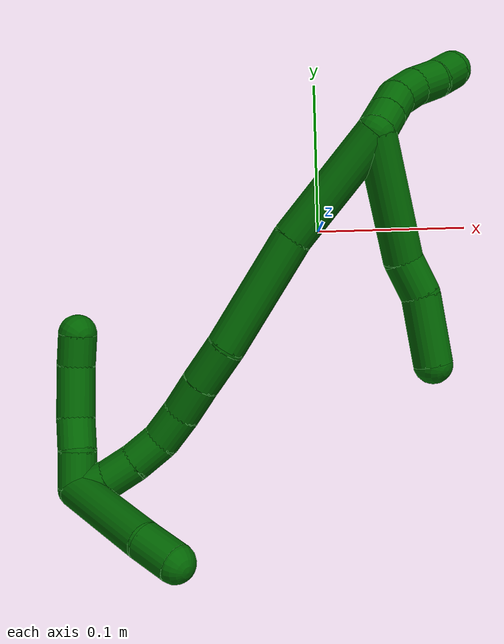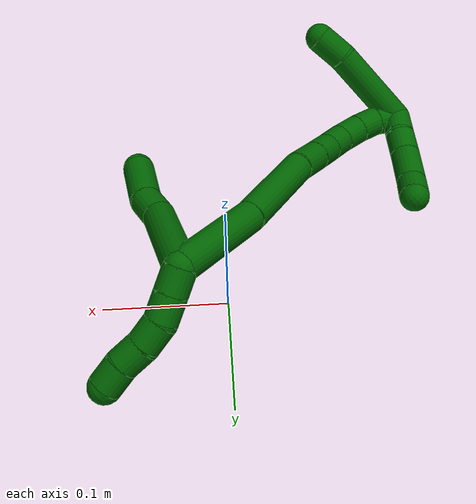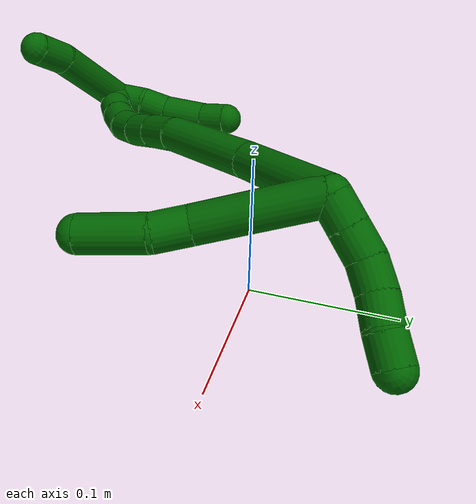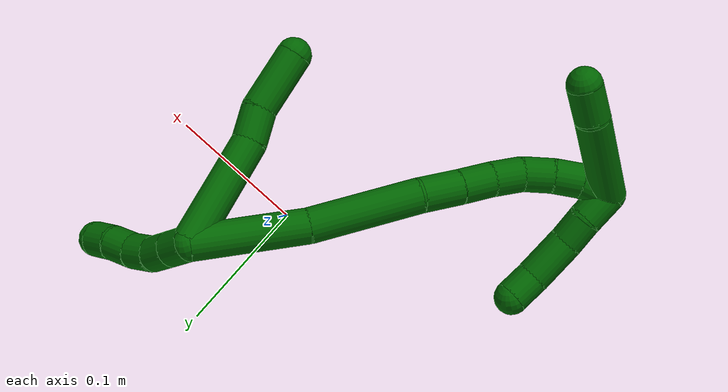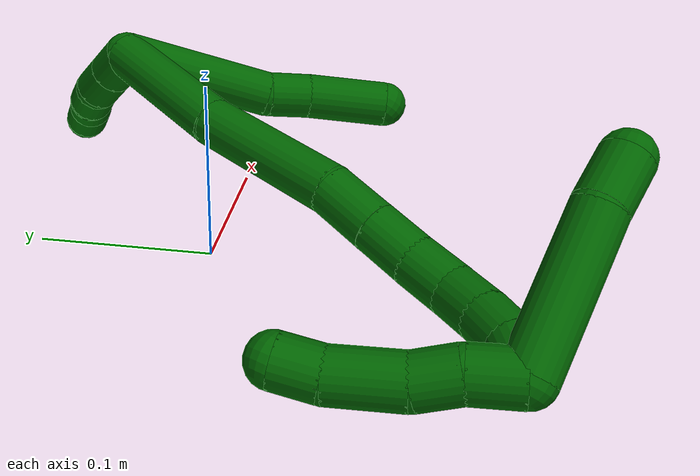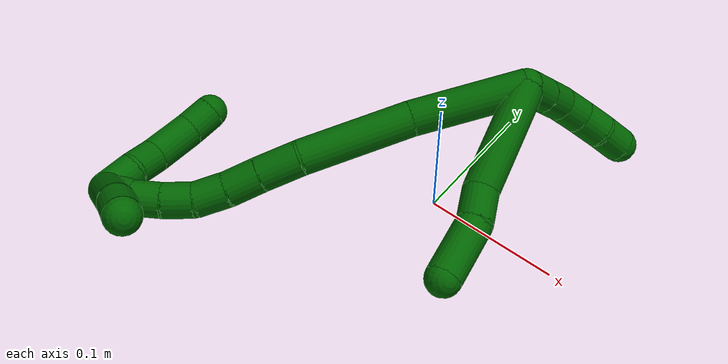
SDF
<sdf version="1.7">
 <world name="default">
  <model name="6">
   <static>0</static>
   <link name="6">
    <collision name="collision-cylinder-e_1_2_8">
     <pose>0.002349 -0.039345 0.009653 1.33021 0.057907 0.045422</pose>
     <geometry><cylinder><radius>0.0125</radius><length>0.081159</length></cylinder></geometry>
     <surface>
      <friction><ode><mu>1.16</mu><mu2>1.16</mu2><slip1>0</slip1><slip2>0</slip2></ode></friction>
      <contact><ode><kp>1e+06</kp><kd>1</kd><max_vel>0</max_vel><min_depth>0.001</min_depth></ode></contact>
     </surface>
    </collision>
    <visual name="visual-cylinder-e_1_2_8">
     <pose>0.002349 -0.039345 0.009653 1.33021 0.057907 0.045422</pose>
     <geometry><cylinder><radius>0.0125</radius><length>0.081159</length></cylinder></geometry>
     <material><ambient>0 0.392157 0.003922 1</ambient></material>
    </visual>
    <collision name="collision-cylinder-e_2_8_9">
     <pose>0.006562 -0.089272 0.025126 1.06794 0.153205 0.0907</pose>
     <geometry><cylinder><radius>0.0125</radius><length>0.024441</length></cylinder></geometry>
     <surface>
      <friction><ode><mu>1.16</mu><mu2>1.16</mu2><slip1>0</slip1><slip2>0</slip2></ode></friction>
      <contact><ode><kp>1e+06</kp><kd>1</kd><max_vel>0</max_vel><min_depth>0.001</min_depth></ode></contact>
     </surface>
    </collision>
    <visual name="visual-cylinder-e_2_8_9">
     <pose>0.006562 -0.089272 0.025126 1.06794 0.153205 0.0907</pose>
     <geometry><cylinder><radius>0.0125</radius><length>0.024441</length></cylinder></geometry>
     <material><ambient>0 0.392157 0.003922 1</ambient></material>
    </visual>
    <collision name="collision-cylinder-e_3_9_6">
     <pose>0.006126 -0.120482 0.038823 1.20603 -0.103815 -0.071518</pose>
     <geometry><cylinder><radius>0.0125</radius><length>0.044399</length></cylinder></geometry>
     <surface>
      <friction><ode><mu>1.16</mu><mu2>1.16</mu2><slip1>0</slip1><slip2>0</slip2></ode></friction>
      <contact><ode><kp>1e+06</kp><kd>1</kd><max_vel>0</max_vel><min_depth>0.001</min_depth></ode></contact>
     </surface>
    </collision>
    <visual name="visual-cylinder-e_3_9_6">
     <pose>0.006126 -0.120482 0.038823 1.20603 -0.103815 -0.071518</pose>
     <geometry><cylinder><radius>0.0125</radius><length>0.044399</length></cylinder></geometry>
     <material><ambient>0 0.392157 0.003922 1</ambient></material>
    </visual>
    <collision name="collision-cylinder-e_1_2_10">
     <pose>0.008716 0.002461 -0.004239 -2.61564 1.05856 -2.27894</pose>
     <geometry><cylinder><radius>0.0125</radius><length>0.02</length></cylinder></geometry>
     <surface>
      <friction><ode><mu>1.16</mu><mu2>1.16</mu2><slip1>0</slip1><slip2>0</slip2></ode></friction>
      <contact><ode><kp>1e+06</kp><kd>1</kd><max_vel>0</max_vel><min_depth>0.001</min_depth></ode></contact>
     </surface>
    </collision>
    <visual name="visual-cylinder-e_1_2_10">
     <pose>0.008716 0.002461 -0.004239 -2.61564 1.05856 -2.27894</pose>
     <geometry><cylinder><radius>0.0125</radius><length>0.02</length></cylinder></geometry>
     <material><ambient>0 0.392157 0.003922 1</ambient></material>
    </visual>
    <collision name="collision-cylinder-e_2_10_11">
     <pose>0.026164 0.007376 -0.012691 -2.61407 1.06148 -2.2791</pose>
     <geometry><cylinder><radius>0.0125</radius><length>0.02</length></cylinder></geometry>
     <surface>
      <friction><ode><mu>1.16</mu><mu2>1.16</mu2><slip1>0</slip1><slip2>0</slip2></ode></friction>
      <contact><ode><kp>1e+06</kp><kd>1</kd><max_vel>0</max_vel><min_depth>0.001</min_depth></ode></contact>
     </surface>
    </collision>
    <visual name="visual-cylinder-e_2_10_11">
     <pose>0.026164 0.007376 -0.012691 -2.61407 1.06148 -2.2791</pose>
     <geometry><cylinder><radius>0.0125</radius><length>0.02</length></cylinder></geometry>
     <material><ambient>0 0.392157 0.003922 1</ambient></material>
    </visual>
    <collision name="collision-cylinder-e_3_11_12">
     <pose>0.044688 0.010959 -0.018582 -2.54969 1.36712 -2.42524</pose>
     <geometry><cylinder><radius>0.0125</radius><length>0.02</length></cylinder></geometry>
     <surface>
      <friction><ode><mu>1.16</mu><mu2>1.16</mu2><slip1>0</slip1><slip2>0</slip2></ode></friction>
      <contact><ode><kp>1e+06</kp><kd>1</kd><max_vel>0</max_vel><min_depth>0.001</min_depth></ode></contact>
     </surface>
    </collision>
    <visual name="visual-cylinder-e_3_11_12">
     <pose>0.044688 0.010959 -0.018582 -2.54969 1.36712 -2.42524</pose>
     <geometry><cylinder><radius>0.0125</radius><length>0.02</length></cylinder></geometry>
     <material><ambient>0 0.392157 0.003922 1</ambient></material>
    </visual>
    <collision name="collision-cylinder-e_4_12_13">
     <pose>0.064469 0.012553 -0.020106 -1.24899 1.52167 -1.20275</pose>
     <geometry><cylinder><radius>0.0125</radius><length>0.02</length></cylinder></geometry>
     <surface>
      <friction><ode><mu>1.16</mu><mu2>1.16</mu2><slip1>0</slip1><slip2>0</slip2></ode></friction>
      <contact><ode><kp>1e+06</kp><kd>1</kd><max_vel>0</max_vel><min_depth>0.001</min_depth></ode></contact>
     </surface>
    </collision>
    <visual name="visual-cylinder-e_4_12_13">
     <pose>0.064469 0.012553 -0.020106 -1.24899 1.52167 -1.20275</pose>
     <geometry><cylinder><radius>0.0125</radius><length>0.02</length></cylinder></geometry>
     <material><ambient>0 0.392157 0.003922 1</ambient></material>
    </visual>
    <collision name="collision-cylinder-e_5_13_5">
     <pose>0.08429 0.01366 -0.021655 -2.78215 1.38767 -2.71151</pose>
     <geometry><cylinder><radius>0.0125</radius><length>0.02</length></cylinder></geometry>
     <surface>
      <friction><ode><mu>1.16</mu><mu2>1.16</mu2><slip1>0</slip1><slip2>0</slip2></ode></friction>
      <contact><ode><kp>1e+06</kp><kd>1</kd><max_vel>0</max_vel><min_depth>0.001</min_depth></ode></contact>
     </surface>
    </collision>
    <visual name="visual-cylinder-e_5_13_5">
     <pose>0.08429 0.01366 -0.021655 -2.78215 1.38767 -2.71151</pose>
     <geometry><cylinder><radius>0.0125</radius><length>0.02</length></cylinder></geometry>
     <material><ambient>0 0.392157 0.003922 1</ambient></material>
    </visual>
    <collision name="collision-cylinder-e_1_2_14">
     <pose>-0.024043 -0.030191 -0.011711 1.94083 -0.638644 -0.899741</pose>
     <geometry><cylinder><radius>0.0125</radius><length>0.080665</length></cylinder></geometry>
     <surface>
      <friction><ode><mu>1.16</mu><mu2>1.16</mu2><slip1>0</slip1><slip2>0</slip2></ode></friction>
      <contact><ode><kp>1e+06</kp><kd>1</kd><max_vel>0</max_vel><min_depth>0.001</min_depth></ode></contact>
     </surface>
    </collision>
    <visual name="visual-cylinder-e_1_2_14">
     <pose>-0.024043 -0.030191 -0.011711 1.94083 -0.638644 -0.899741</pose>
     <geometry><cylinder><radius>0.0125</radius><length>0.080665</length></cylinder></geometry>
     <material><ambient>0 0.392157 0.003922 1</ambient></material>
    </visual>
    <collision name="collision-cylinder-e_2_14_15">
     <pose>-0.070699 -0.09223 -0.030501 1.78951 -0.606109 -0.743395</pose>
     <geometry><cylinder><radius>0.0125</radius><length>0.079391</length></cylinder></geometry>
     <surface>
      <friction><ode><mu>1.16</mu><mu2>1.16</mu2><slip1>0</slip1><slip2>0</slip2></ode></friction>
      <contact><ode><kp>1e+06</kp><kd>1</kd><max_vel>0</max_vel><min_depth>0.001</min_depth></ode></contact>
     </surface>
    </collision>
    <visual name="visual-cylinder-e_2_14_15">
     <pose>-0.070699 -0.09223 -0.030501 1.78951 -0.606109 -0.743395</pose>
     <geometry><cylinder><radius>0.0125</radius><length>0.079391</length></cylinder></geometry>
     <material><ambient>0 0.392157 0.003922 1</ambient></material>
    </visual>
    <collision name="collision-cylinder-e_3_15_16">
     <pose>-0.100361 -0.136025 -0.042298 1.94686 -0.501871 -0.720724</pose>
     <geometry><cylinder><radius>0.0125</radius><length>0.029304</length></cylinder></geometry>
     <surface>
      <friction><ode><mu>1.16</mu><mu2>1.16</mu2><slip1>0</slip1><slip2>0</slip2></ode></friction>
      <contact><ode><kp>1e+06</kp><kd>1</kd><max_vel>0</max_vel><min_depth>0.001</min_depth></ode></contact>
     </surface>
    </collision>
    <visual name="visual-cylinder-e_3_15_16">
     <pose>-0.100361 -0.136025 -0.042298 1.94686 -0.501871 -0.720724</pose>
     <geometry><cylinder><radius>0.0125</radius><length>0.029304</length></cylinder></geometry>
     <material><ambient>0 0.392157 0.003922 1</ambient></material>
    </visual>
    <collision name="collision-cylinder-e_4_16_17">
     <pose>-0.112965 -0.158131 -0.050856 1.93234 -0.472888 -0.671074</pose>
     <geometry><cylinder><radius>0.0125</radius><length>0.024397</length></cylinder></geometry>
     <surface>
      <friction><ode><mu>1.16</mu><mu2>1.16</mu2><slip1>0</slip1><slip2>0</slip2></ode></friction>
      <contact><ode><kp>1e+06</kp><kd>1</kd><max_vel>0</max_vel><min_depth>0.001</min_depth></ode></contact>
     </surface>
    </collision>
    <visual name="visual-cylinder-e_4_16_17">
     <pose>-0.112965 -0.158131 -0.050856 1.93234 -0.472888 -0.671074</pose>
     <geometry><cylinder><radius>0.0125</radius><length>0.024397</length></cylinder></geometry>
     <material><ambient>0 0.392157 0.003922 1</ambient></material>
    </visual>
    <collision name="collision-cylinder-e_5_17_18">
     <pose>-0.124988 -0.177298 -0.058152 1.93688 -0.590438 -0.832817</pose>
     <geometry><cylinder><radius>0.0125</radius><length>0.02323</length></cylinder></geometry>
     <surface>
      <friction><ode><mu>1.16</mu><mu2>1.16</mu2><slip1>0</slip1><slip2>0</slip2></ode></friction>
      <contact><ode><kp>1e+06</kp><kd>1</kd><max_vel>0</max_vel><min_depth>0.001</min_depth></ode></contact>
     </surface>
    </collision>
    <visual name="visual-cylinder-e_5_17_18">
     <pose>-0.124988 -0.177298 -0.058152 1.93688 -0.590438 -0.832817</pose>
     <geometry><cylinder><radius>0.0125</radius><length>0.02323</length></cylinder></geometry>
     <material><ambient>0 0.392157 0.003922 1</ambient></material>
    </visual>
    <collision name="collision-cylinder-e_6_18_19">
     <pose>-0.139729 -0.192423 -0.065179 2.09962 -0.862812 -1.35208</pose>
     <geometry><cylinder><radius>0.0125</radius><length>0.021785</length></cylinder></geometry>
     <surface>
      <friction><ode><mu>1.16</mu><mu2>1.16</mu2><slip1>0</slip1><slip2>0</slip2></ode></friction>
      <contact><ode><kp>1e+06</kp><kd>1</kd><max_vel>0</max_vel><min_depth>0.001</min_depth></ode></contact>
     </surface>
    </collision>
    <visual name="visual-cylinder-e_6_18_19">
     <pose>-0.139729 -0.192423 -0.065179 2.09962 -0.862812 -1.35208</pose>
     <geometry><cylinder><radius>0.0125</radius><length>0.021785</length></cylinder></geometry>
     <material><ambient>0 0.392157 0.003922 1</ambient></material>
    </visual>
    <collision name="collision-cylinder-e_7_19_20">
     <pose>-0.156141 -0.20334 -0.072812 2.2726 -0.912946 -1.62729</pose>
     <geometry><cylinder><radius>0.0125</radius><length>0.020567</length></cylinder></geometry>
     <surface>
      <friction><ode><mu>1.16</mu><mu2>1.16</mu2><slip1>0</slip1><slip2>0</slip2></ode></friction>
      <contact><ode><kp>1e+06</kp><kd>1</kd><max_vel>0</max_vel><min_depth>0.001</min_depth></ode></contact>
     </surface>
    </collision>
    <visual name="visual-cylinder-e_7_19_20">
     <pose>-0.156141 -0.20334 -0.072812 2.2726 -0.912946 -1.62729</pose>
     <geometry><cylinder><radius>0.0125</radius><length>0.020567</length></cylinder></geometry>
     <material><ambient>0 0.392157 0.003922 1</ambient></material>
    </visual>
    <collision name="collision-cylinder-e_8_20_1">
     <pose>-0.172252 -0.210779 -0.082886 2.72849 -0.881754 -2.30575</pose>
     <geometry><cylinder><radius>0.0125</radius><length>0.020661</length></cylinder></geometry>
     <surface>
      <friction><ode><mu>1.16</mu><mu2>1.16</mu2><slip1>0</slip1><slip2>0</slip2></ode></friction>
      <contact><ode><kp>1e+06</kp><kd>1</kd><max_vel>0</max_vel><min_depth>0.001</min_depth></ode></contact>
     </surface>
    </collision>
    <visual name="visual-cylinder-e_8_20_1">
     <pose>-0.172252 -0.210779 -0.082886 2.72849 -0.881754 -2.30575</pose>
     <geometry><cylinder><radius>0.0125</radius><length>0.020661</length></cylinder></geometry>
     <material><ambient>0 0.392157 0.003922 1</ambient></material>
    </visual>
    <collision name="collision-cylinder-e_1_1_21">
     <pose>-0.176178 -0.203067 -0.093104 -1.95653 0.347624 -0.510251</pose>
     <geometry><cylinder><radius>0.0125</radius><length>0.023758</length></cylinder></geometry>
     <surface>
      <friction><ode><mu>1.16</mu><mu2>1.16</mu2><slip1>0</slip1><slip2>0</slip2></ode></friction>
      <contact><ode><kp>1e+06</kp><kd>1</kd><max_vel>0</max_vel><min_depth>0.001</min_depth></ode></contact>
     </surface>
    </collision>
    <visual name="visual-cylinder-e_1_1_21">
     <pose>-0.176178 -0.203067 -0.093104 -1.95653 0.347624 -0.510251</pose>
     <geometry><cylinder><radius>0.0125</radius><length>0.023758</length></cylinder></geometry>
     <material><ambient>0 0.392157 0.003922 1</ambient></material>
    </visual>
    <collision name="collision-cylinder-e_2_21_22">
     <pose>-0.168015 -0.18483 -0.103011 -2.19682 0.400002 -0.755345</pose>
     <geometry><cylinder><radius>0.0125</radius><length>0.021141</length></cylinder></geometry>
     <surface>
      <friction><ode><mu>1.16</mu><mu2>1.16</mu2><slip1>0</slip1><slip2>0</slip2></ode></friction>
      <contact><ode><kp>1e+06</kp><kd>1</kd><max_vel>0</max_vel><min_depth>0.001</min_depth></ode></contact>
     </surface>
    </collision>
    <visual name="visual-cylinder-e_2_21_22">
     <pose>-0.168015 -0.18483 -0.103011 -2.19682 0.400002 -0.755345</pose>
     <geometry><cylinder><radius>0.0125</radius><length>0.021141</length></cylinder></geometry>
     <material><ambient>0 0.392157 0.003922 1</ambient></material>
    </visual>
    <collision name="collision-cylinder-e_3_22_23">
     <pose>-0.158027 -0.161964 -0.114647 -1.94793 0.349544 -0.508471</pose>
     <geometry><cylinder><radius>0.0125</radius><length>0.03429</length></cylinder></geometry>
     <surface>
      <friction><ode><mu>1.16</mu><mu2>1.16</mu2><slip1>0</slip1><slip2>0</slip2></ode></friction>
      <contact><ode><kp>1e+06</kp><kd>1</kd><max_vel>0</max_vel><min_depth>0.001</min_depth></ode></contact>
     </surface>
    </collision>
    <visual name="visual-cylinder-e_3_22_23">
     <pose>-0.158027 -0.161964 -0.114647 -1.94793 0.349544 -0.508471</pose>
     <geometry><cylinder><radius>0.0125</radius><length>0.03429</length></cylinder></geometry>
     <material><ambient>0 0.392157 0.003922 1</ambient></material>
    </visual>
    <collision name="collision-cylinder-e_4_23_4">
     <pose>-0.149188 -0.137166 -0.122311 -1.74532 0.289193 -0.343645</pose>
     <geometry><cylinder><radius>0.0125</radius><length>0.020811</length></cylinder></geometry>
     <surface>
      <friction><ode><mu>1.16</mu><mu2>1.16</mu2><slip1>0</slip1><slip2>0</slip2></ode></friction>
      <contact><ode><kp>1e+06</kp><kd>1</kd><max_vel>0</max_vel><min_depth>0.001</min_depth></ode></contact>
     </surface>
    </collision>
    <visual name="visual-cylinder-e_4_23_4">
     <pose>-0.149188 -0.137166 -0.122311 -1.74532 0.289193 -0.343645</pose>
     <geometry><cylinder><radius>0.0125</radius><length>0.020811</length></cylinder></geometry>
     <material><ambient>0 0.392157 0.003922 1</ambient></material>
    </visual>
    <collision name="collision-cylinder-e_1_1_24">
     <pose>-0.180311 -0.213394 -0.052011 -0.000564 -0.002323 1e-06</pose>
     <geometry><cylinder><radius>0.0125</radius><length>0.073781</length></cylinder></geometry>
     <surface>
      <friction><ode><mu>1.16</mu><mu2>1.16</mu2><slip1>0</slip1><slip2>0</slip2></ode></friction>
      <contact><ode><kp>1e+06</kp><kd>1</kd><max_vel>0</max_vel><min_depth>0.001</min_depth></ode></contact>
     </surface>
    </collision>
    <visual name="visual-cylinder-e_1_1_24">
     <pose>-0.180311 -0.213394 -0.052011 -0.000564 -0.002323 1e-06</pose>
     <geometry><cylinder><radius>0.0125</radius><length>0.073781</length></cylinder></geometry>
     <material><ambient>0 0.392157 0.003922 1</ambient></material>
    </visual>
    <collision name="collision-cylinder-e_2_24_3">
     <pose>-0.178614 -0.215176 -0.002259 0.139186 0.136377 0.009521</pose>
     <geometry><cylinder><radius>0.0125</radius><length>0.026219</length></cylinder></geometry>
     <surface>
      <friction><ode><mu>1.16</mu><mu2>1.16</mu2><slip1>0</slip1><slip2>0</slip2></ode></friction>
      <contact><ode><kp>1e+06</kp><kd>1</kd><max_vel>0</max_vel><min_depth>0.001</min_depth></ode></contact>
     </surface>
    </collision>
    <visual name="visual-cylinder-e_2_24_3">
     <pose>-0.178614 -0.215176 -0.002259 0.139186 0.136377 0.009521</pose>
     <geometry><cylinder><radius>0.0125</radius><length>0.026219</length></cylinder></geometry>
     <material><ambient>0 0.392157 0.003922 1</ambient></material>
    </visual>
    <collision name="collision-sphere-3">
     <pose>-0.176832 -0.216977 0.010603 0 -0 0</pose>
     <geometry><sphere><radius>0.0125</radius></sphere></geometry>
     <surface>
      <friction><ode><mu>1.16</mu><mu2>1.16</mu2><slip1>0</slip1><slip2>0</slip2></ode></friction>
      <contact><ode><kp>1e+06</kp><kd>1</kd><max_vel>0</max_vel><min_depth>0.001</min_depth></ode></contact>
     </surface>
    </collision>
    <visual name="visual-sphere-3">
     <pose>-0.176832 -0.216977 0.010603 0 -0 0</pose>
     <geometry><sphere><radius>0.0125</radius></sphere></geometry>
     <material><ambient>0 0.392157 0.003922 1</ambient></material>
    </visual>
    <collision name="collision-sphere-24">
     <pose>-0.180396 -0.213374 -0.015121 0 -0 0</pose>
     <geometry><sphere><radius>0.0125</radius></sphere></geometry>
     <surface>
      <friction><ode><mu>1.16</mu><mu2>1.16</mu2><slip1>0</slip1><slip2>0</slip2></ode></friction>
      <contact><ode><kp>1e+06</kp><kd>1</kd><max_vel>0</max_vel><min_depth>0.001</min_depth></ode></contact>
     </surface>
    </collision>
    <visual name="visual-sphere-24">
     <pose>-0.180396 -0.213374 -0.015121 0 -0 0</pose>
     <geometry><sphere><radius>0.0125</radius></sphere></geometry>
     <material><ambient>0 0.392157 0.003922 1</ambient></material>
    </visual>
    <collision name="collision-sphere-4">
     <pose>-0.146221 -0.127344 -0.124043 0 -0 0</pose>
     <geometry><sphere><radius>0.0125</radius></sphere></geometry>
     <surface>
      <friction><ode><mu>1.16</mu><mu2>1.16</mu2><slip1>0</slip1><slip2>0</slip2></ode></friction>
      <contact><ode><kp>1e+06</kp><kd>1</kd><max_vel>0</max_vel><min_depth>0.001</min_depth></ode></contact>
     </surface>
    </collision>
    <visual name="visual-sphere-4">
     <pose>-0.146221 -0.127344 -0.124043 0 -0 0</pose>
     <geometry><sphere><radius>0.0125</radius></sphere></geometry>
     <material><ambient>0 0.392157 0.003922 1</ambient></material>
    </visual>
    <collision name="collision-sphere-23">
     <pose>-0.152156 -0.146987 -0.120579 0 -0 0</pose>
     <geometry><sphere><radius>0.0125</radius></sphere></geometry>
     <surface>
      <friction><ode><mu>1.16</mu><mu2>1.16</mu2><slip1>0</slip1><slip2>0</slip2></ode></friction>
      <contact><ode><kp>1e+06</kp><kd>1</kd><max_vel>0</max_vel><min_depth>0.001</min_depth></ode></contact>
     </surface>
    </collision>
    <visual name="visual-sphere-23">
     <pose>-0.152156 -0.146987 -0.120579 0 -0 0</pose>
     <geometry><sphere><radius>0.0125</radius></sphere></geometry>
     <material><ambient>0 0.392157 0.003922 1</ambient></material>
    </visual>
    <collision name="collision-sphere-22">
     <pose>-0.163899 -0.17694 -0.108715 0 -0 0</pose>
     <geometry><sphere><radius>0.0125</radius></sphere></geometry>
     <surface>
      <friction><ode><mu>1.16</mu><mu2>1.16</mu2><slip1>0</slip1><slip2>0</slip2></ode></friction>
      <contact><ode><kp>1e+06</kp><kd>1</kd><max_vel>0</max_vel><min_depth>0.001</min_depth></ode></contact>
     </surface>
    </collision>
    <visual name="visual-sphere-22">
     <pose>-0.163899 -0.17694 -0.108715 0 -0 0</pose>
     <geometry><sphere><radius>0.0125</radius></sphere></geometry>
     <material><ambient>0 0.392157 0.003922 1</ambient></material>
    </visual>
    <collision name="collision-sphere-21">
     <pose>-0.172132 -0.192719 -0.097306 0 -0 0</pose>
     <geometry><sphere><radius>0.0125</radius></sphere></geometry>
     <surface>
      <friction><ode><mu>1.16</mu><mu2>1.16</mu2><slip1>0</slip1><slip2>0</slip2></ode></friction>
      <contact><ode><kp>1e+06</kp><kd>1</kd><max_vel>0</max_vel><min_depth>0.001</min_depth></ode></contact>
     </surface>
    </collision>
    <visual name="visual-sphere-21">
     <pose>-0.172132 -0.192719 -0.097306 0 -0 0</pose>
     <geometry><sphere><radius>0.0125</radius></sphere></geometry>
     <material><ambient>0 0.392157 0.003922 1</ambient></material>
    </visual>
    <collision name="collision-sphere-1">
     <pose>-0.180225 -0.213415 -0.088902 0 -0 0</pose>
     <geometry><sphere><radius>0.0125</radius></sphere></geometry>
     <surface>
      <friction><ode><mu>1.16</mu><mu2>1.16</mu2><slip1>0</slip1><slip2>0</slip2></ode></friction>
      <contact><ode><kp>1e+06</kp><kd>1</kd><max_vel>0</max_vel><min_depth>0.001</min_depth></ode></contact>
     </surface>
    </collision>
    <visual name="visual-sphere-1">
     <pose>-0.180225 -0.213415 -0.088902 0 -0 0</pose>
     <geometry><sphere><radius>0.0125</radius></sphere></geometry>
     <material><ambient>0 0.392157 0.003922 1</ambient></material>
    </visual>
    <collision name="collision-sphere-11">
     <pose>0.034895 0.00983 -0.016904 0 -0 0</pose>
     <geometry><sphere><radius>0.0125</radius></sphere></geometry>
     <surface>
      <friction><ode><mu>1.16</mu><mu2>1.16</mu2><slip1>0</slip1><slip2>0</slip2></ode></friction>
      <contact><ode><kp>1e+06</kp><kd>1</kd><max_vel>0</max_vel><min_depth>0.001</min_depth></ode></contact>
     </surface>
    </collision>
    <visual name="visual-sphere-11">
     <pose>0.034895 0.00983 -0.016904 0 -0 0</pose>
     <geometry><sphere><radius>0.0125</radius></sphere></geometry>
     <material><ambient>0 0.392157 0.003922 1</ambient></material>
    </visual>
    <collision name="collision-sphere-10">
     <pose>0.017433 0.004921 -0.008478 0 -0 0</pose>
     <geometry><sphere><radius>0.0125</radius></sphere></geometry>
     <surface>
      <friction><ode><mu>1.16</mu><mu2>1.16</mu2><slip1>0</slip1><slip2>0</slip2></ode></friction>
      <contact><ode><kp>1e+06</kp><kd>1</kd><max_vel>0</max_vel><min_depth>0.001</min_depth></ode></contact>
     </surface>
    </collision>
    <visual name="visual-sphere-10">
     <pose>0.017433 0.004921 -0.008478 0 -0 0</pose>
     <geometry><sphere><radius>0.0125</radius></sphere></geometry>
     <material><ambient>0 0.392157 0.003922 1</ambient></material>
    </visual>
    <collision name="collision-sphere-6">
     <pose>0.003826 -0.141109 0.0467 0 -0 0</pose>
     <geometry><sphere><radius>0.0125</radius></sphere></geometry>
     <surface>
      <friction><ode><mu>1.16</mu><mu2>1.16</mu2><slip1>0</slip1><slip2>0</slip2></ode></friction>
      <contact><ode><kp>1e+06</kp><kd>1</kd><max_vel>0</max_vel><min_depth>0.001</min_depth></ode></contact>
     </surface>
    </collision>
    <visual name="visual-sphere-6">
     <pose>0.003826 -0.141109 0.0467 0 -0 0</pose>
     <geometry><sphere><radius>0.0125</radius></sphere></geometry>
     <material><ambient>0 0.392157 0.003922 1</ambient></material>
    </visual>
    <collision name="collision-sphere-9">
     <pose>0.008427 -0.099855 0.030947 0 -0 0</pose>
     <geometry><sphere><radius>0.0125</radius></sphere></geometry>
     <surface>
      <friction><ode><mu>1.16</mu><mu2>1.16</mu2><slip1>0</slip1><slip2>0</slip2></ode></friction>
      <contact><ode><kp>1e+06</kp><kd>1</kd><max_vel>0</max_vel><min_depth>0.001</min_depth></ode></contact>
     </surface>
    </collision>
    <visual name="visual-sphere-9">
     <pose>0.008427 -0.099855 0.030947 0 -0 0</pose>
     <geometry><sphere><radius>0.0125</radius></sphere></geometry>
     <material><ambient>0 0.392157 0.003922 1</ambient></material>
    </visual>
    <collision name="collision-sphere-2">
     <geometry><sphere><radius>0.0125</radius></sphere></geometry>
     <surface>
      <friction><ode><mu>1.16</mu><mu2>1.16</mu2><slip1>0</slip1><slip2>0</slip2></ode></friction>
      <contact><ode><kp>1e+06</kp><kd>1</kd><max_vel>0</max_vel><min_depth>0.001</min_depth></ode></contact>
     </surface>
    </collision>
    <visual name="visual-sphere-2">
     <geometry><sphere><radius>0.0125</radius></sphere></geometry>
     <material><ambient>0 0.392157 0.003922 1</ambient></material>
    </visual>
    <collision name="collision-sphere-19">
     <pose>-0.148004 -0.198539 -0.068753 0 -0 0</pose>
     <geometry><sphere><radius>0.0125</radius></sphere></geometry>
     <surface>
      <friction><ode><mu>1.16</mu><mu2>1.16</mu2><slip1>0</slip1><slip2>0</slip2></ode></friction>
      <contact><ode><kp>1e+06</kp><kd>1</kd><max_vel>0</max_vel><min_depth>0.001</min_depth></ode></contact>
     </surface>
    </collision>
    <visual name="visual-sphere-19">
     <pose>-0.148004 -0.198539 -0.068753 0 -0 0</pose>
     <geometry><sphere><radius>0.0125</radius></sphere></geometry>
     <material><ambient>0 0.392157 0.003922 1</ambient></material>
    </visual>
    <collision name="collision-sphere-8">
     <pose>0.004697 -0.07869 0.019306 0 -0 0</pose>
     <geometry><sphere><radius>0.0125</radius></sphere></geometry>
     <surface>
      <friction><ode><mu>1.16</mu><mu2>1.16</mu2><slip1>0</slip1><slip2>0</slip2></ode></friction>
      <contact><ode><kp>1e+06</kp><kd>1</kd><max_vel>0</max_vel><min_depth>0.001</min_depth></ode></contact>
     </surface>
    </collision>
    <visual name="visual-sphere-8">
     <pose>0.004697 -0.07869 0.019306 0 -0 0</pose>
     <geometry><sphere><radius>0.0125</radius></sphere></geometry>
     <material><ambient>0 0.392157 0.003922 1</ambient></material>
    </visual>
    <collision name="collision-sphere-12">
     <pose>0.054481 0.012087 -0.020261 0 -0 0</pose>
     <geometry><sphere><radius>0.0125</radius></sphere></geometry>
     <surface>
      <friction><ode><mu>1.16</mu><mu2>1.16</mu2><slip1>0</slip1><slip2>0</slip2></ode></friction>
      <contact><ode><kp>1e+06</kp><kd>1</kd><max_vel>0</max_vel><min_depth>0.001</min_depth></ode></contact>
     </surface>
    </collision>
    <visual name="visual-sphere-12">
     <pose>0.054481 0.012087 -0.020261 0 -0 0</pose>
     <geometry><sphere><radius>0.0125</radius></sphere></geometry>
     <material><ambient>0 0.392157 0.003922 1</ambient></material>
    </visual>
    <collision name="collision-sphere-13">
     <pose>0.074457 0.013019 -0.01995 0 -0 0</pose>
     <geometry><sphere><radius>0.0125</radius></sphere></geometry>
     <surface>
      <friction><ode><mu>1.16</mu><mu2>1.16</mu2><slip1>0</slip1><slip2>0</slip2></ode></friction>
      <contact><ode><kp>1e+06</kp><kd>1</kd><max_vel>0</max_vel><min_depth>0.001</min_depth></ode></contact>
     </surface>
    </collision>
    <visual name="visual-sphere-13">
     <pose>0.074457 0.013019 -0.01995 0 -0 0</pose>
     <geometry><sphere><radius>0.0125</radius></sphere></geometry>
     <material><ambient>0 0.392157 0.003922 1</ambient></material>
    </visual>
    <collision name="collision-sphere-5">
     <pose>0.094123 0.0143 -0.02336 0 -0 0</pose>
     <geometry><sphere><radius>0.0125</radius></sphere></geometry>
     <surface>
      <friction><ode><mu>1.16</mu><mu2>1.16</mu2><slip1>0</slip1><slip2>0</slip2></ode></friction>
      <contact><ode><kp>1e+06</kp><kd>1</kd><max_vel>0</max_vel><min_depth>0.001</min_depth></ode></contact>
     </surface>
    </collision>
    <visual name="visual-sphere-5">
     <pose>0.094123 0.0143 -0.02336 0 -0 0</pose>
     <geometry><sphere><radius>0.0125</radius></sphere></geometry>
     <material><ambient>0 0.392157 0.003922 1</ambient></material>
    </visual>
    <collision name="collision-sphere-14">
     <pose>-0.048085 -0.060383 -0.023423 0 -0 0</pose>
     <geometry><sphere><radius>0.0125</radius></sphere></geometry>
     <surface>
      <friction><ode><mu>1.16</mu><mu2>1.16</mu2><slip1>0</slip1><slip2>0</slip2></ode></friction>
      <contact><ode><kp>1e+06</kp><kd>1</kd><max_vel>0</max_vel><min_depth>0.001</min_depth></ode></contact>
     </surface>
    </collision>
    <visual name="visual-sphere-14">
     <pose>-0.048085 -0.060383 -0.023423 0 -0 0</pose>
     <geometry><sphere><radius>0.0125</radius></sphere></geometry>
     <material><ambient>0 0.392157 0.003922 1</ambient></material>
    </visual>
    <collision name="collision-sphere-15">
     <pose>-0.093312 -0.124078 -0.03758 0 -0 0</pose>
     <geometry><sphere><radius>0.0125</radius></sphere></geometry>
     <surface>
      <friction><ode><mu>1.16</mu><mu2>1.16</mu2><slip1>0</slip1><slip2>0</slip2></ode></friction>
      <contact><ode><kp>1e+06</kp><kd>1</kd><max_vel>0</max_vel><min_depth>0.001</min_depth></ode></contact>
     </surface>
    </collision>
    <visual name="visual-sphere-15">
     <pose>-0.093312 -0.124078 -0.03758 0 -0 0</pose>
     <geometry><sphere><radius>0.0125</radius></sphere></geometry>
     <material><ambient>0 0.392157 0.003922 1</ambient></material>
    </visual>
    <collision name="collision-sphere-16">
     <pose>-0.10741 -0.147973 -0.047015 0 -0 0</pose>
     <geometry><sphere><radius>0.0125</radius></sphere></geometry>
     <surface>
      <friction><ode><mu>1.16</mu><mu2>1.16</mu2><slip1>0</slip1><slip2>0</slip2></ode></friction>
      <contact><ode><kp>1e+06</kp><kd>1</kd><max_vel>0</max_vel><min_depth>0.001</min_depth></ode></contact>
     </surface>
    </collision>
    <visual name="visual-sphere-16">
     <pose>-0.10741 -0.147973 -0.047015 0 -0 0</pose>
     <geometry><sphere><radius>0.0125</radius></sphere></geometry>
     <material><ambient>0 0.392157 0.003922 1</ambient></material>
    </visual>
    <collision name="collision-sphere-17">
     <pose>-0.118521 -0.168288 -0.054698 0 -0 0</pose>
     <geometry><sphere><radius>0.0125</radius></sphere></geometry>
     <surface>
      <friction><ode><mu>1.16</mu><mu2>1.16</mu2><slip1>0</slip1><slip2>0</slip2></ode></friction>
      <contact><ode><kp>1e+06</kp><kd>1</kd><max_vel>0</max_vel><min_depth>0.001</min_depth></ode></contact>
     </surface>
    </collision>
    <visual name="visual-sphere-17">
     <pose>-0.118521 -0.168288 -0.054698 0 -0 0</pose>
     <geometry><sphere><radius>0.0125</radius></sphere></geometry>
     <material><ambient>0 0.392157 0.003922 1</ambient></material>
    </visual>
    <collision name="collision-sphere-18">
     <pose>-0.131454 -0.186307 -0.061606 0 -0 0</pose>
     <geometry><sphere><radius>0.0125</radius></sphere></geometry>
     <surface>
      <friction><ode><mu>1.16</mu><mu2>1.16</mu2><slip1>0</slip1><slip2>0</slip2></ode></friction>
      <contact><ode><kp>1e+06</kp><kd>1</kd><max_vel>0</max_vel><min_depth>0.001</min_depth></ode></contact>
     </surface>
    </collision>
    <visual name="visual-sphere-18">
     <pose>-0.131454 -0.186307 -0.061606 0 -0 0</pose>
     <geometry><sphere><radius>0.0125</radius></sphere></geometry>
     <material><ambient>0 0.392157 0.003922 1</ambient></material>
    </visual>
    <collision name="collision-sphere-20">
     <pose>-0.164278 -0.208142 -0.076871 0 -0 0</pose>
     <geometry><sphere><radius>0.0125</radius></sphere></geometry>
     <surface>
      <friction><ode><mu>1.16</mu><mu2>1.16</mu2><slip1>0</slip1><slip2>0</slip2></ode></friction>
      <contact><ode><kp>1e+06</kp><kd>1</kd><max_vel>0</max_vel><min_depth>0.001</min_depth></ode></contact>
     </surface>
    </collision>
    <visual name="visual-sphere-20">
     <pose>-0.164278 -0.208142 -0.076871 0 -0 0</pose>
     <geometry><sphere><radius>0.0125</radius></sphere></geometry>
     <material><ambient>0 0.392157 0.003922 1</ambient></material>
    </visual>
    <inertial>
     <pose>-0.073367 -0.110346 -0.033353 0 -0 0</pose>
     <mass>0.75</mass>
     <inertia><ixx>9e-05</ixx><ixy>0</ixy><ixz>0</ixz><iyy>-3e-06</iyy><iyz>0</iyz><izz>0.000174</izz></inertia>
    </inertial>
   </link>
   <pose>0.032648 0.052217 0.10335 0.578616 0.620669 0.375675</pose>
  </model>
 </world>
</sdf>
